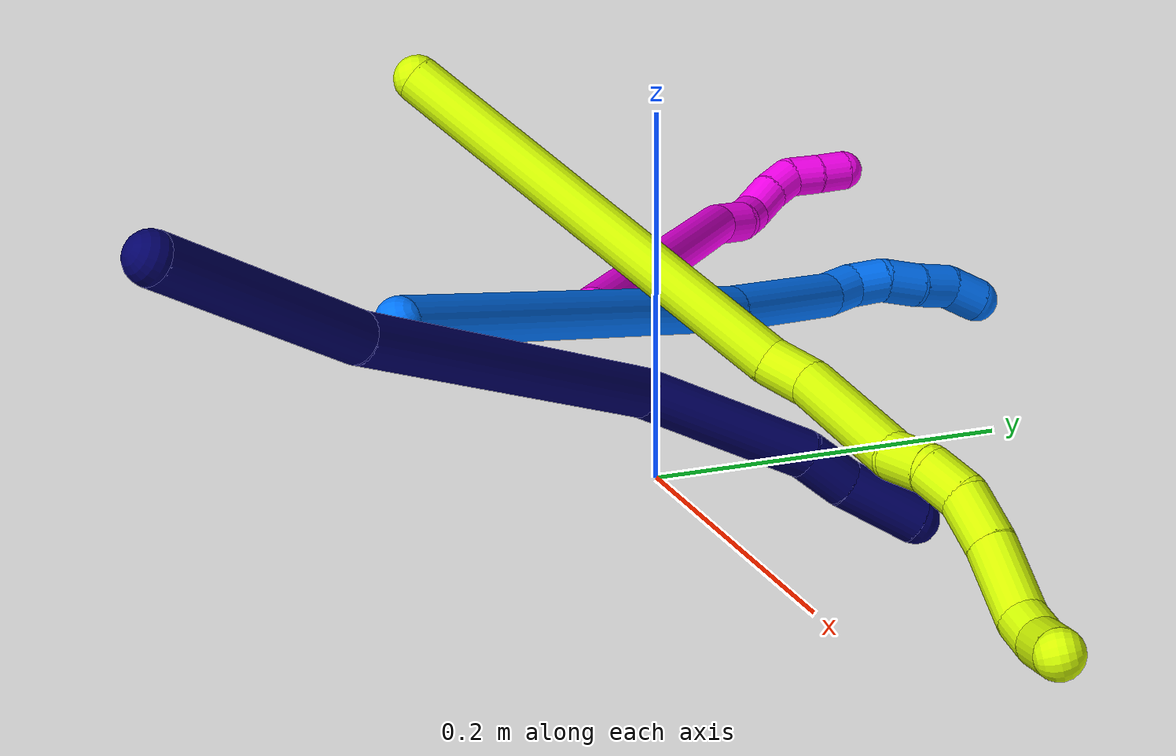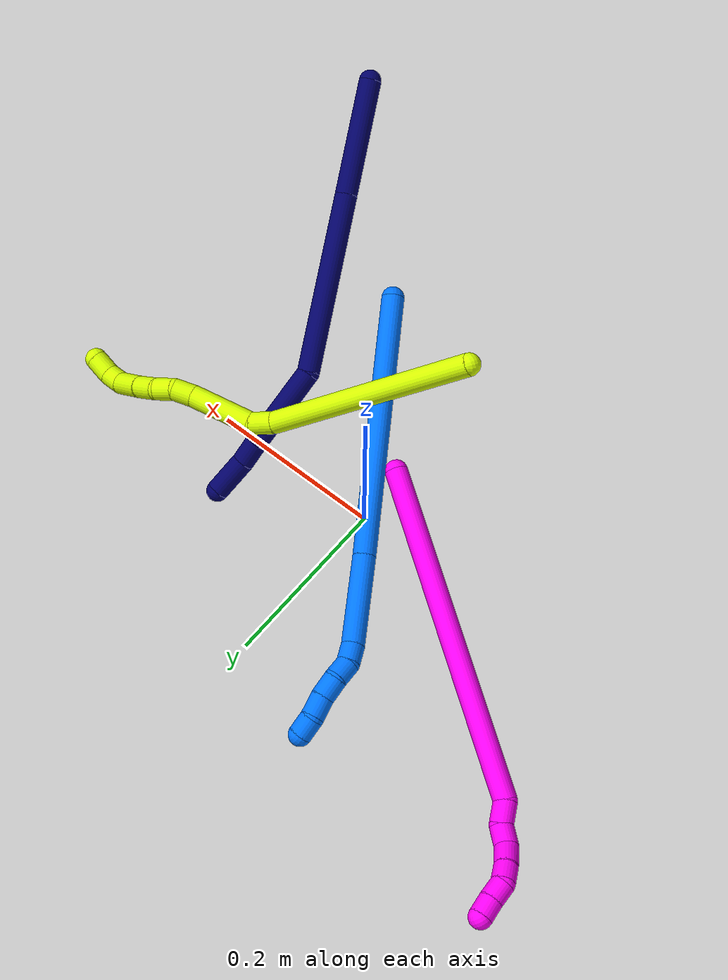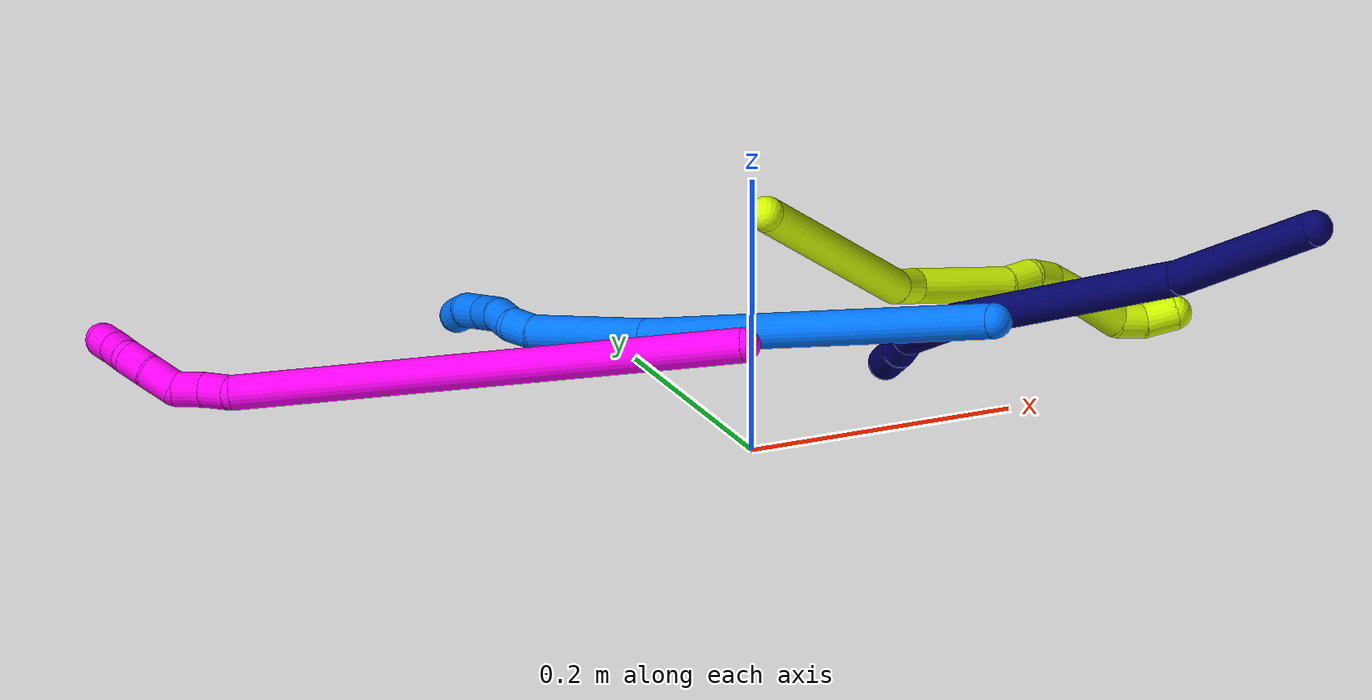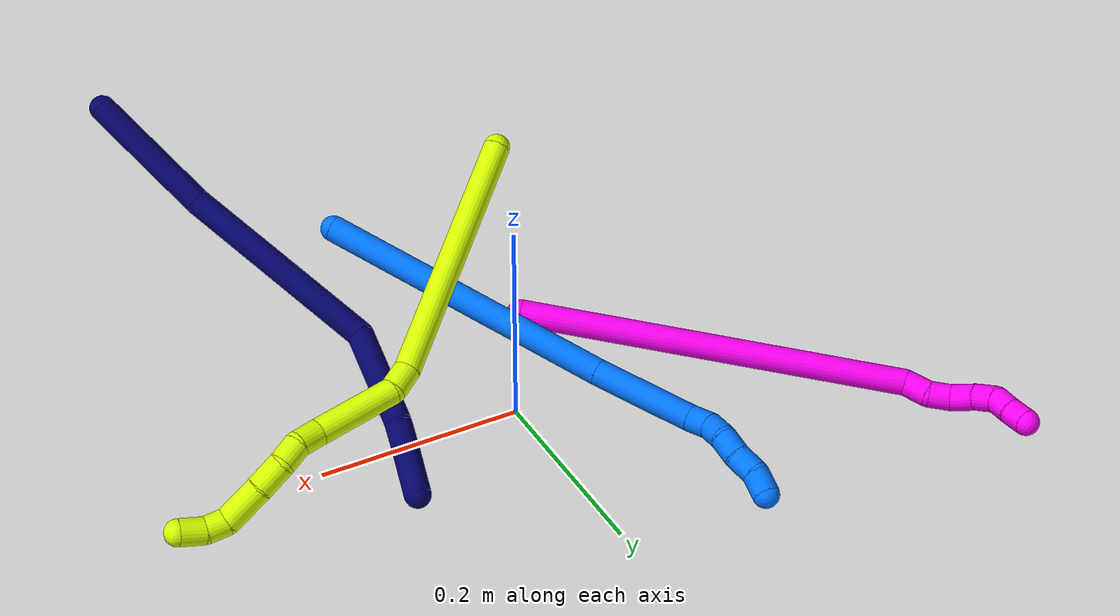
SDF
<sdf version="1.7">
 <world name="default">
  <model name="7">
   <static>0</static>
   <link name="7">
    <collision name="collision-cylinder-e_1_1_4">
     <pose>-0.013851 0.005534 -0.063304 -3.0544 -0.214608 2.37197</pose>
     <geometry><cylinder><radius>0.0125</radius><length>0.130075</length></cylinder></geometry>
     <surface>
      <friction><ode><mu>1.16</mu><mu2>1.16</mu2><slip1>0</slip1><slip2>0</slip2></ode></friction>
      <contact><ode><kp>1e+06</kp><kd>1</kd><max_vel>0</max_vel><min_depth>0.001</min_depth></ode></contact>
     </surface>
    </collision>
    <visual name="visual-cylinder-e_1_1_4">
     <pose>-0.013851 0.005534 -0.063304 -3.0544 -0.214608 2.37197</pose>
     <geometry><cylinder><radius>0.0125</radius><length>0.130075</length></cylinder></geometry>
     <material><ambient>0.003922 0 0.403922 1</ambient></material>
    </visual>
    <collision name="collision-cylinder-e_2_4_5">
     <pose>-0.048097 0.03211 -0.224523 -2.92991 -0.200902 1.51819</pose>
     <geometry><cylinder><radius>0.0125</radius><length>0.204411</length></cylinder></geometry>
     <surface>
      <friction><ode><mu>1.16</mu><mu2>1.16</mu2><slip1>0</slip1><slip2>0</slip2></ode></friction>
      <contact><ode><kp>1e+06</kp><kd>1</kd><max_vel>0</max_vel><min_depth>0.001</min_depth></ode></contact>
     </surface>
    </collision>
    <visual name="visual-cylinder-e_2_4_5">
     <pose>-0.048097 0.03211 -0.224523 -2.92991 -0.200902 1.51819</pose>
     <geometry><cylinder><radius>0.0125</radius><length>0.204411</length></cylinder></geometry>
     <material><ambient>0.003922 0 0.403922 1</ambient></material>
    </visual>
    <collision name="collision-cylinder-e_3_5_6">
     <pose>-0.058478 0.052008 -0.368729 3.11689 0.212992 2.91153</pose>
     <geometry><cylinder><radius>0.0125</radius><length>0.094752</length></cylinder></geometry>
     <surface>
      <friction><ode><mu>1.16</mu><mu2>1.16</mu2><slip1>0</slip1><slip2>0</slip2></ode></friction>
      <contact><ode><kp>1e+06</kp><kd>1</kd><max_vel>0</max_vel><min_depth>0.001</min_depth></ode></contact>
     </surface>
    </collision>
    <visual name="visual-cylinder-e_3_5_6">
     <pose>-0.058478 0.052008 -0.368729 3.11689 0.212992 2.91153</pose>
     <geometry><cylinder><radius>0.0125</radius><length>0.094752</length></cylinder></geometry>
     <material><ambient>0.003922 0 0.403922 1</ambient></material>
    </visual>
    <collision name="collision-cylinder-e_4_6_7">
     <pose>-0.046379 0.047413 -0.427956 2.88085 0.154485 1.06651</pose>
     <geometry><cylinder><radius>0.0125</radius><length>0.027098</length></cylinder></geometry>
     <surface>
      <friction><ode><mu>1.16</mu><mu2>1.16</mu2><slip1>0</slip1><slip2>0</slip2></ode></friction>
      <contact><ode><kp>1e+06</kp><kd>1</kd><max_vel>0</max_vel><min_depth>0.001</min_depth></ode></contact>
     </surface>
    </collision>
    <visual name="visual-cylinder-e_4_6_7">
     <pose>-0.046379 0.047413 -0.427956 2.88085 0.154485 1.06651</pose>
     <geometry><cylinder><radius>0.0125</radius><length>0.027098</length></cylinder></geometry>
     <material><ambient>0.003922 0 0.403922 1</ambient></material>
    </visual>
    <collision name="collision-cylinder-e_5_7_2">
     <pose>-0.03828 0.04062 -0.46161 2.98167 0.279081 2.10468</pose>
     <geometry><cylinder><radius>0.0125</radius><length>0.043663</length></cylinder></geometry>
     <surface>
      <friction><ode><mu>1.16</mu><mu2>1.16</mu2><slip1>0</slip1><slip2>0</slip2></ode></friction>
      <contact><ode><kp>1e+06</kp><kd>1</kd><max_vel>0</max_vel><min_depth>0.001</min_depth></ode></contact>
     </surface>
    </collision>
    <visual name="visual-cylinder-e_5_7_2">
     <pose>-0.03828 0.04062 -0.46161 2.98167 0.279081 2.10468</pose>
     <geometry><cylinder><radius>0.0125</radius><length>0.043663</length></cylinder></geometry>
     <material><ambient>0.003922 0 0.403922 1</ambient></material>
    </visual>
    <collision name="collision-sphere-2">
     <pose>-0.032266 0.037278 -0.482329 0 -0 0</pose>
     <geometry><sphere><radius>0.0125</radius></sphere></geometry>
     <surface>
      <friction><ode><mu>1.16</mu><mu2>1.16</mu2><slip1>0</slip1><slip2>0</slip2></ode></friction>
      <contact><ode><kp>1e+06</kp><kd>1</kd><max_vel>0</max_vel><min_depth>0.001</min_depth></ode></contact>
     </surface>
    </collision>
    <visual name="visual-sphere-2">
     <pose>-0.032266 0.037278 -0.482329 0 -0 0</pose>
     <geometry><sphere><radius>0.0125</radius></sphere></geometry>
     <material><ambient>0.003922 0 0.403922 1</ambient></material>
    </visual>
    <collision name="collision-sphere-7">
     <pose>-0.044294 0.043962 -0.440891 0 -0 0</pose>
     <geometry><sphere><radius>0.0125</radius></sphere></geometry>
     <surface>
      <friction><ode><mu>1.16</mu><mu2>1.16</mu2><slip1>0</slip1><slip2>0</slip2></ode></friction>
      <contact><ode><kp>1e+06</kp><kd>1</kd><max_vel>0</max_vel><min_depth>0.001</min_depth></ode></contact>
     </surface>
    </collision>
    <visual name="visual-sphere-7">
     <pose>-0.044294 0.043962 -0.440891 0 -0 0</pose>
     <geometry><sphere><radius>0.0125</radius></sphere></geometry>
     <material><ambient>0.003922 0 0.403922 1</ambient></material>
    </visual>
    <collision name="collision-sphere-6">
     <pose>-0.048463 0.050864 -0.41502 0 -0 0</pose>
     <geometry><sphere><radius>0.0125</radius></sphere></geometry>
     <surface>
      <friction><ode><mu>1.16</mu><mu2>1.16</mu2><slip1>0</slip1><slip2>0</slip2></ode></friction>
      <contact><ode><kp>1e+06</kp><kd>1</kd><max_vel>0</max_vel><min_depth>0.001</min_depth></ode></contact>
     </surface>
    </collision>
    <visual name="visual-sphere-6">
     <pose>-0.048463 0.050864 -0.41502 0 -0 0</pose>
     <geometry><sphere><radius>0.0125</radius></sphere></geometry>
     <material><ambient>0.003922 0 0.403922 1</ambient></material>
    </visual>
    <collision name="collision-sphere-5">
     <pose>-0.068493 0.053152 -0.322438 0 -0 0</pose>
     <geometry><sphere><radius>0.0125</radius></sphere></geometry>
     <surface>
      <friction><ode><mu>1.16</mu><mu2>1.16</mu2><slip1>0</slip1><slip2>0</slip2></ode></friction>
      <contact><ode><kp>1e+06</kp><kd>1</kd><max_vel>0</max_vel><min_depth>0.001</min_depth></ode></contact>
     </surface>
    </collision>
    <visual name="visual-sphere-5">
     <pose>-0.068493 0.053152 -0.322438 0 -0 0</pose>
     <geometry><sphere><radius>0.0125</radius></sphere></geometry>
     <material><ambient>0.003922 0 0.403922 1</ambient></material>
    </visual>
    <collision name="collision-sphere-1">
     <geometry><sphere><radius>0.0125</radius></sphere></geometry>
     <surface>
      <friction><ode><mu>1.16</mu><mu2>1.16</mu2><slip1>0</slip1><slip2>0</slip2></ode></friction>
      <contact><ode><kp>1e+06</kp><kd>1</kd><max_vel>0</max_vel><min_depth>0.001</min_depth></ode></contact>
     </surface>
    </collision>
    <visual name="visual-sphere-1">
     <geometry><sphere><radius>0.0125</radius></sphere></geometry>
     <material><ambient>0.003922 0 0.403922 1</ambient></material>
    </visual>
    <collision name="collision-sphere-4">
     <pose>-0.027701 0.011068 -0.126609 0 -0 0</pose>
     <geometry><sphere><radius>0.0125</radius></sphere></geometry>
     <surface>
      <friction><ode><mu>1.16</mu><mu2>1.16</mu2><slip1>0</slip1><slip2>0</slip2></ode></friction>
      <contact><ode><kp>1e+06</kp><kd>1</kd><max_vel>0</max_vel><min_depth>0.001</min_depth></ode></contact>
     </surface>
    </collision>
    <visual name="visual-sphere-4">
     <pose>-0.027701 0.011068 -0.126609 0 -0 0</pose>
     <geometry><sphere><radius>0.0125</radius></sphere></geometry>
     <material><ambient>0.003922 0 0.403922 1</ambient></material>
    </visual>
    <inertial>
     <pose>-0.040205 0.030539 -0.241639 0 -0 0</pose>
     <mass>0.5</mass>
     <inertia>
      <ixx>0.000687</ixx>
      <ixy>0</ixy>
      <ixz>0</ixz>
      <iyy>0.001068</iyy>
      <iyz>0</iyz>
      <izz>-3.3e-05</izz>
     </inertia>
    </inertial>
   </link>
   <pose>0.265056 -0.332547 0.234247 1.02358 -0.300396 0.366177</pose>
  </model>
  <model name="10">
   <static>0</static>
   <link name="10">
    <collision name="collision-cylinder-e_1_1_4">
     <pose>-0.042925 0.0823 -0.158838 -2.66354 -0.235496 0.903865</pose>
     <geometry><cylinder><radius>0.0125</radius><length>0.367942</length></cylinder></geometry>
     <surface>
      <friction><ode><mu>1.16</mu><mu2>1.16</mu2><slip1>0</slip1><slip2>0</slip2></ode></friction>
      <contact><ode><kp>1e+06</kp><kd>1</kd><max_vel>0</max_vel><min_depth>0.001</min_depth></ode></contact>
     </surface>
    </collision>
    <visual name="visual-cylinder-e_1_1_4">
     <pose>-0.042925 0.0823 -0.158838 -2.66354 -0.235496 0.903865</pose>
     <geometry><cylinder><radius>0.0125</radius><length>0.367942</length></cylinder></geometry>
     <material><ambient>1 0 0.964706 1</ambient></material>
    </visual>
    <collision name="collision-cylinder-e_2_4_5">
     <pose>-0.085461 0.174192 -0.325349 -2.24559 0.031713 -0.065969</pose>
     <geometry><cylinder><radius>0.0125</radius><length>0.024578</length></cylinder></geometry>
     <surface>
      <friction><ode><mu>1.16</mu><mu2>1.16</mu2><slip1>0</slip1><slip2>0</slip2></ode></friction>
      <contact><ode><kp>1e+06</kp><kd>1</kd><max_vel>0</max_vel><min_depth>0.001</min_depth></ode></contact>
     </surface>
    </collision>
    <visual name="visual-cylinder-e_2_4_5">
     <pose>-0.085461 0.174192 -0.325349 -2.24559 0.031713 -0.065969</pose>
     <geometry><cylinder><radius>0.0125</radius><length>0.024578</length></cylinder></geometry>
     <material><ambient>1 0 0.964706 1</ambient></material>
    </visual>
    <collision name="collision-cylinder-e_3_5_6">
     <pose>-0.087974 0.189896 -0.341743 -2.53021 -0.26615 0.802363</pose>
     <geometry><cylinder><radius>0.0125</radius><length>0.022078</length></cylinder></geometry>
     <surface>
      <friction><ode><mu>1.16</mu><mu2>1.16</mu2><slip1>0</slip1><slip2>0</slip2></ode></friction>
      <contact><ode><kp>1e+06</kp><kd>1</kd><max_vel>0</max_vel><min_depth>0.001</min_depth></ode></contact>
     </surface>
    </collision>
    <visual name="visual-cylinder-e_3_5_6">
     <pose>-0.087974 0.189896 -0.341743 -2.53021 -0.26615 0.802363</pose>
     <geometry><cylinder><radius>0.0125</radius><length>0.022078</length></cylinder></geometry>
     <material><ambient>1 0 0.964706 1</ambient></material>
    </visual>
    <collision name="collision-cylinder-e_4_6_7">
     <pose>-0.096126 0.206232 -0.355179 -2.00294 -0.436198 0.666709</pose>
     <geometry><cylinder><radius>0.0125</radius><length>0.024842</length></cylinder></geometry>
     <surface>
      <friction><ode><mu>1.16</mu><mu2>1.16</mu2><slip1>0</slip1><slip2>0</slip2></ode></friction>
      <contact><ode><kp>1e+06</kp><kd>1</kd><max_vel>0</max_vel><min_depth>0.001</min_depth></ode></contact>
     </surface>
    </collision>
    <visual name="visual-cylinder-e_4_6_7">
     <pose>-0.096126 0.206232 -0.355179 -2.00294 -0.436198 0.666709</pose>
     <geometry><cylinder><radius>0.0125</radius><length>0.024842</length></cylinder></geometry>
     <material><ambient>1 0 0.964706 1</ambient></material>
    </visual>
    <collision name="collision-cylinder-e_5_7_8">
     <pose>-0.104367 0.225489 -0.363583 -1.9584 -0.29766 0.439139</pose>
     <geometry><cylinder><radius>0.0125</radius><length>0.020415</length></cylinder></geometry>
     <surface>
      <friction><ode><mu>1.16</mu><mu2>1.16</mu2><slip1>0</slip1><slip2>0</slip2></ode></friction>
      <contact><ode><kp>1e+06</kp><kd>1</kd><max_vel>0</max_vel><min_depth>0.001</min_depth></ode></contact>
     </surface>
    </collision>
    <visual name="visual-cylinder-e_5_7_8">
     <pose>-0.104367 0.225489 -0.363583 -1.9584 -0.29766 0.439139</pose>
     <geometry><cylinder><radius>0.0125</radius><length>0.020415</length></cylinder></geometry>
     <material><ambient>1 0 0.964706 1</ambient></material>
    </visual>
    <collision name="collision-cylinder-e_6_8_9">
     <pose>-0.105318 0.244077 -0.369657 -1.81551 0.204609 -0.261405</pose>
     <geometry><cylinder><radius>0.0125</radius><length>0.020111</length></cylinder></geometry>
     <surface>
      <friction><ode><mu>1.16</mu><mu2>1.16</mu2><slip1>0</slip1><slip2>0</slip2></ode></friction>
      <contact><ode><kp>1e+06</kp><kd>1</kd><max_vel>0</max_vel><min_depth>0.001</min_depth></ode></contact>
     </surface>
    </collision>
    <visual name="visual-cylinder-e_6_8_9">
     <pose>-0.105318 0.244077 -0.369657 -1.81551 0.204609 -0.261405</pose>
     <geometry><cylinder><radius>0.0125</radius><length>0.020111</length></cylinder></geometry>
     <material><ambient>1 0 0.964706 1</ambient></material>
    </visual>
    <collision name="collision-cylinder-e_7_9_2">
     <pose>-0.101765 0.263099 -0.37494 -1.86778 0.15127 -0.204167</pose>
     <geometry><cylinder><radius>0.0125</radius><length>0.020034</length></cylinder></geometry>
     <surface>
      <friction><ode><mu>1.16</mu><mu2>1.16</mu2><slip1>0</slip1><slip2>0</slip2></ode></friction>
      <contact><ode><kp>1e+06</kp><kd>1</kd><max_vel>0</max_vel><min_depth>0.001</min_depth></ode></contact>
     </surface>
    </collision>
    <visual name="visual-cylinder-e_7_9_2">
     <pose>-0.101765 0.263099 -0.37494 -1.86778 0.15127 -0.204167</pose>
     <geometry><cylinder><radius>0.0125</radius><length>0.020034</length></cylinder></geometry>
     <material><ambient>1 0 0.964706 1</ambient></material>
    </visual>
    <collision name="collision-sphere-2">
     <pose>-0.100255 0.272568 -0.377838 0 -0 0</pose>
     <geometry><sphere><radius>0.0125</radius></sphere></geometry>
     <surface>
      <friction><ode><mu>1.16</mu><mu2>1.16</mu2><slip1>0</slip1><slip2>0</slip2></ode></friction>
      <contact><ode><kp>1e+06</kp><kd>1</kd><max_vel>0</max_vel><min_depth>0.001</min_depth></ode></contact>
     </surface>
    </collision>
    <visual name="visual-sphere-2">
     <pose>-0.100255 0.272568 -0.377838 0 -0 0</pose>
     <geometry><sphere><radius>0.0125</radius></sphere></geometry>
     <material><ambient>1 0 0.964706 1</ambient></material>
    </visual>
    <collision name="collision-sphere-9">
     <pose>-0.103274 0.253629 -0.372042 0 -0 0</pose>
     <geometry><sphere><radius>0.0125</radius></sphere></geometry>
     <surface>
      <friction><ode><mu>1.16</mu><mu2>1.16</mu2><slip1>0</slip1><slip2>0</slip2></ode></friction>
      <contact><ode><kp>1e+06</kp><kd>1</kd><max_vel>0</max_vel><min_depth>0.001</min_depth></ode></contact>
     </surface>
    </collision>
    <visual name="visual-sphere-9">
     <pose>-0.103274 0.253629 -0.372042 0 -0 0</pose>
     <geometry><sphere><radius>0.0125</radius></sphere></geometry>
     <material><ambient>1 0 0.964706 1</ambient></material>
    </visual>
    <collision name="collision-sphere-4">
     <pose>-0.08585 0.164601 -0.317675 0 -0 0</pose>
     <geometry><sphere><radius>0.0125</radius></sphere></geometry>
     <surface>
      <friction><ode><mu>1.16</mu><mu2>1.16</mu2><slip1>0</slip1><slip2>0</slip2></ode></friction>
      <contact><ode><kp>1e+06</kp><kd>1</kd><max_vel>0</max_vel><min_depth>0.001</min_depth></ode></contact>
     </surface>
    </collision>
    <visual name="visual-sphere-4">
     <pose>-0.08585 0.164601 -0.317675 0 -0 0</pose>
     <geometry><sphere><radius>0.0125</radius></sphere></geometry>
     <material><ambient>1 0 0.964706 1</ambient></material>
    </visual>
    <collision name="collision-sphere-1">
     <geometry><sphere><radius>0.0125</radius></sphere></geometry>
     <surface>
      <friction><ode><mu>1.16</mu><mu2>1.16</mu2><slip1>0</slip1><slip2>0</slip2></ode></friction>
      <contact><ode><kp>1e+06</kp><kd>1</kd><max_vel>0</max_vel><min_depth>0.001</min_depth></ode></contact>
     </surface>
    </collision>
    <visual name="visual-sphere-1">
     <geometry><sphere><radius>0.0125</radius></sphere></geometry>
     <material><ambient>1 0 0.964706 1</ambient></material>
    </visual>
    <collision name="collision-sphere-8">
     <pose>-0.107361 0.234524 -0.367271 0 -0 0</pose>
     <geometry><sphere><radius>0.0125</radius></sphere></geometry>
     <surface>
      <friction><ode><mu>1.16</mu><mu2>1.16</mu2><slip1>0</slip1><slip2>0</slip2></ode></friction>
      <contact><ode><kp>1e+06</kp><kd>1</kd><max_vel>0</max_vel><min_depth>0.001</min_depth></ode></contact>
     </surface>
    </collision>
    <visual name="visual-sphere-8">
     <pose>-0.107361 0.234524 -0.367271 0 -0 0</pose>
     <geometry><sphere><radius>0.0125</radius></sphere></geometry>
     <material><ambient>1 0 0.964706 1</ambient></material>
    </visual>
    <collision name="collision-sphere-5">
     <pose>-0.085071 0.183782 -0.333022 0 -0 0</pose>
     <geometry><sphere><radius>0.0125</radius></sphere></geometry>
     <surface>
      <friction><ode><mu>1.16</mu><mu2>1.16</mu2><slip1>0</slip1><slip2>0</slip2></ode></friction>
      <contact><ode><kp>1e+06</kp><kd>1</kd><max_vel>0</max_vel><min_depth>0.001</min_depth></ode></contact>
     </surface>
    </collision>
    <visual name="visual-sphere-5">
     <pose>-0.085071 0.183782 -0.333022 0 -0 0</pose>
     <geometry><sphere><radius>0.0125</radius></sphere></geometry>
     <material><ambient>1 0 0.964706 1</ambient></material>
    </visual>
    <collision name="collision-sphere-6">
     <pose>-0.090878 0.196009 -0.350464 0 -0 0</pose>
     <geometry><sphere><radius>0.0125</radius></sphere></geometry>
     <surface>
      <friction><ode><mu>1.16</mu><mu2>1.16</mu2><slip1>0</slip1><slip2>0</slip2></ode></friction>
      <contact><ode><kp>1e+06</kp><kd>1</kd><max_vel>0</max_vel><min_depth>0.001</min_depth></ode></contact>
     </surface>
    </collision>
    <visual name="visual-sphere-6">
     <pose>-0.090878 0.196009 -0.350464 0 -0 0</pose>
     <geometry><sphere><radius>0.0125</radius></sphere></geometry>
     <material><ambient>1 0 0.964706 1</ambient></material>
    </visual>
    <collision name="collision-sphere-7">
     <pose>-0.101373 0.216455 -0.359894 0 -0 0</pose>
     <geometry><sphere><radius>0.0125</radius></sphere></geometry>
     <surface>
      <friction><ode><mu>1.16</mu><mu2>1.16</mu2><slip1>0</slip1><slip2>0</slip2></ode></friction>
      <contact><ode><kp>1e+06</kp><kd>1</kd><max_vel>0</max_vel><min_depth>0.001</min_depth></ode></contact>
     </surface>
    </collision>
    <visual name="visual-sphere-7">
     <pose>-0.101373 0.216455 -0.359894 0 -0 0</pose>
     <geometry><sphere><radius>0.0125</radius></sphere></geometry>
     <material><ambient>1 0 0.964706 1</ambient></material>
    </visual>
    <inertial>
     <pose>-0.057024 0.117323 -0.210352 0 -0 0</pose>
     <mass>0.5</mass>
     <inertia>
      <ixx>0.005692</ixx>
      <ixy>0</ixy>
      <ixz>0</ixz>
      <iyy>0.001266</iyy>
      <iyz>0</iyz>
      <izz>-0.000928</izz>
     </inertia>
    </inertial>
   </link>
   <pose>-0.02004 -0.02831 0.090803 0.48794 0.908175 0.358008</pose>
  </model>
  <model name="14">
   <static>0</static>
   <link name="14">
    <collision name="collision-cylinder-e_1_1_4">
     <pose>-0.131707 0.063187 0.002886 -1.52515 -1.12307 1.08233</pose>
     <geometry><cylinder><radius>0.0125</radius><length>0.292216</length></cylinder></geometry>
     <surface>
      <friction><ode><mu>1.16</mu><mu2>1.16</mu2><slip1>0</slip1><slip2>0</slip2></ode></friction>
      <contact><ode><kp>1e+06</kp><kd>1</kd><max_vel>0</max_vel><min_depth>0.001</min_depth></ode></contact>
     </surface>
    </collision>
    <visual name="visual-cylinder-e_1_1_4">
     <pose>-0.131707 0.063187 0.002886 -1.52515 -1.12307 1.08233</pose>
     <geometry><cylinder><radius>0.0125</radius><length>0.292216</length></cylinder></geometry>
     <material><ambient>0 0.462745 1 1</ambient></material>
    </visual>
    <collision name="collision-cylinder-e_2_4_5">
     <pose>-0.306349 0.14919 0.004386 -1.63147 -1.08159 1.13592</pose>
     <geometry><cylinder><radius>0.0125</radius><length>0.097283</length></cylinder></geometry>
     <surface>
      <friction><ode><mu>1.16</mu><mu2>1.16</mu2><slip1>0</slip1><slip2>0</slip2></ode></friction>
      <contact><ode><kp>1e+06</kp><kd>1</kd><max_vel>0</max_vel><min_depth>0.001</min_depth></ode></contact>
     </surface>
    </collision>
    <visual name="visual-cylinder-e_2_4_5">
     <pose>-0.306349 0.14919 0.004386 -1.63147 -1.08159 1.13592</pose>
     <geometry><cylinder><radius>0.0125</radius><length>0.097283</length></cylinder></geometry>
     <material><ambient>0 0.462745 1 1</ambient></material>
    </visual>
    <collision name="collision-cylinder-e_3_5_6">
     <pose>-0.35791 0.17765 0.000391 -2.00382 -0.946139 1.35009</pose>
     <geometry><cylinder><radius>0.0125</radius><length>0.021265</length></cylinder></geometry>
     <surface>
      <friction><ode><mu>1.16</mu><mu2>1.16</mu2><slip1>0</slip1><slip2>0</slip2></ode></friction>
      <contact><ode><kp>1e+06</kp><kd>1</kd><max_vel>0</max_vel><min_depth>0.001</min_depth></ode></contact>
     </surface>
    </collision>
    <visual name="visual-cylinder-e_3_5_6">
     <pose>-0.35791 0.17765 0.000391 -2.00382 -0.946139 1.35009</pose>
     <geometry><cylinder><radius>0.0125</radius><length>0.021265</length></cylinder></geometry>
     <material><ambient>0 0.462745 1 1</ambient></material>
    </visual>
    <collision name="collision-cylinder-e_4_6_7">
     <pose>-0.374922 0.185917 -0.007711 -2.69612 -0.942987 2.30549</pose>
     <geometry><cylinder><radius>0.0125</radius><length>0.020726</length></cylinder></geometry>
     <surface>
      <friction><ode><mu>1.16</mu><mu2>1.16</mu2><slip1>0</slip1><slip2>0</slip2></ode></friction>
      <contact><ode><kp>1e+06</kp><kd>1</kd><max_vel>0</max_vel><min_depth>0.001</min_depth></ode></contact>
     </surface>
    </collision>
    <visual name="visual-cylinder-e_4_6_7">
     <pose>-0.374922 0.185917 -0.007711 -2.69612 -0.942987 2.30549</pose>
     <geometry><cylinder><radius>0.0125</radius><length>0.020726</length></cylinder></geometry>
     <material><ambient>0 0.462745 1 1</ambient></material>
    </visual>
    <collision name="collision-cylinder-e_5_7_8">
     <pose>-0.394286 0.189415 -0.017115 -2.9213 -1.22079 2.82799</pose>
     <geometry><cylinder><radius>0.0125</radius><length>0.023371</length></cylinder></geometry>
     <surface>
      <friction><ode><mu>1.16</mu><mu2>1.16</mu2><slip1>0</slip1><slip2>0</slip2></ode></friction>
      <contact><ode><kp>1e+06</kp><kd>1</kd><max_vel>0</max_vel><min_depth>0.001</min_depth></ode></contact>
     </surface>
    </collision>
    <visual name="visual-cylinder-e_5_7_8">
     <pose>-0.394286 0.189415 -0.017115 -2.9213 -1.22079 2.82799</pose>
     <geometry><cylinder><radius>0.0125</radius><length>0.023371</length></cylinder></geometry>
     <material><ambient>0 0.462745 1 1</ambient></material>
    </visual>
    <collision name="collision-cylinder-e_6_8_9">
     <pose>-0.416168 0.192914 -0.024075 -2.43125 -1.2174 2.16352</pose>
     <geometry><cylinder><radius>0.0125</radius><length>0.023246</length></cylinder></geometry>
     <surface>
      <friction><ode><mu>1.16</mu><mu2>1.16</mu2><slip1>0</slip1><slip2>0</slip2></ode></friction>
      <contact><ode><kp>1e+06</kp><kd>1</kd><max_vel>0</max_vel><min_depth>0.001</min_depth></ode></contact>
     </surface>
    </collision>
    <visual name="visual-cylinder-e_6_8_9">
     <pose>-0.416168 0.192914 -0.024075 -2.43125 -1.2174 2.16352</pose>
     <geometry><cylinder><radius>0.0125</radius><length>0.023246</length></cylinder></geometry>
     <material><ambient>0 0.462745 1 1</ambient></material>
    </visual>
    <collision name="collision-cylinder-e_7_9_2">
     <pose>-0.43772 0.194164 -0.029263 2.57114 -1.33645 -2.43026</pose>
     <geometry><cylinder><radius>0.0125</radius><length>0.021892</length></cylinder></geometry>
     <surface>
      <friction><ode><mu>1.16</mu><mu2>1.16</mu2><slip1>0</slip1><slip2>0</slip2></ode></friction>
      <contact><ode><kp>1e+06</kp><kd>1</kd><max_vel>0</max_vel><min_depth>0.001</min_depth></ode></contact>
     </surface>
    </collision>
    <visual name="visual-cylinder-e_7_9_2">
     <pose>-0.43772 0.194164 -0.029263 2.57114 -1.33645 -2.43026</pose>
     <geometry><cylinder><radius>0.0125</radius><length>0.021892</length></cylinder></geometry>
     <material><ambient>0 0.462745 1 1</ambient></material>
    </visual>
    <collision name="collision-sphere-2">
     <pose>-0.448367 0.192792 -0.031403 0 -0 0</pose>
     <geometry><sphere><radius>0.0125</radius></sphere></geometry>
     <surface>
      <friction><ode><mu>1.16</mu><mu2>1.16</mu2><slip1>0</slip1><slip2>0</slip2></ode></friction>
      <contact><ode><kp>1e+06</kp><kd>1</kd><max_vel>0</max_vel><min_depth>0.001</min_depth></ode></contact>
     </surface>
    </collision>
    <visual name="visual-sphere-2">
     <pose>-0.448367 0.192792 -0.031403 0 -0 0</pose>
     <geometry><sphere><radius>0.0125</radius></sphere></geometry>
     <material><ambient>0 0.462745 1 1</ambient></material>
    </visual>
    <collision name="collision-sphere-9">
     <pose>-0.427073 0.195537 -0.027124 0 -0 0</pose>
     <geometry><sphere><radius>0.0125</radius></sphere></geometry>
     <surface>
      <friction><ode><mu>1.16</mu><mu2>1.16</mu2><slip1>0</slip1><slip2>0</slip2></ode></friction>
      <contact><ode><kp>1e+06</kp><kd>1</kd><max_vel>0</max_vel><min_depth>0.001</min_depth></ode></contact>
     </surface>
    </collision>
    <visual name="visual-sphere-9">
     <pose>-0.427073 0.195537 -0.027124 0 -0 0</pose>
     <geometry><sphere><radius>0.0125</radius></sphere></geometry>
     <material><ambient>0 0.462745 1 1</ambient></material>
    </visual>
    <collision name="collision-sphere-4">
     <pose>-0.263413 0.126374 0.005772 0 -0 0</pose>
     <geometry><sphere><radius>0.0125</radius></sphere></geometry>
     <surface>
      <friction><ode><mu>1.16</mu><mu2>1.16</mu2><slip1>0</slip1><slip2>0</slip2></ode></friction>
      <contact><ode><kp>1e+06</kp><kd>1</kd><max_vel>0</max_vel><min_depth>0.001</min_depth></ode></contact>
     </surface>
    </collision>
    <visual name="visual-sphere-4">
     <pose>-0.263413 0.126374 0.005772 0 -0 0</pose>
     <geometry><sphere><radius>0.0125</radius></sphere></geometry>
     <material><ambient>0 0.462745 1 1</ambient></material>
    </visual>
    <collision name="collision-sphere-1">
     <geometry><sphere><radius>0.0125</radius></sphere></geometry>
     <surface>
      <friction><ode><mu>1.16</mu><mu2>1.16</mu2><slip1>0</slip1><slip2>0</slip2></ode></friction>
      <contact><ode><kp>1e+06</kp><kd>1</kd><max_vel>0</max_vel><min_depth>0.001</min_depth></ode></contact>
     </surface>
    </collision>
    <visual name="visual-sphere-1">
     <geometry><sphere><radius>0.0125</radius></sphere></geometry>
     <material><ambient>0 0.462745 1 1</ambient></material>
    </visual>
    <collision name="collision-sphere-8">
     <pose>-0.405263 0.190291 -0.021025 0 -0 0</pose>
     <geometry><sphere><radius>0.0125</radius></sphere></geometry>
     <surface>
      <friction><ode><mu>1.16</mu><mu2>1.16</mu2><slip1>0</slip1><slip2>0</slip2></ode></friction>
      <contact><ode><kp>1e+06</kp><kd>1</kd><max_vel>0</max_vel><min_depth>0.001</min_depth></ode></contact>
     </surface>
    </collision>
    <visual name="visual-sphere-8">
     <pose>-0.405263 0.190291 -0.021025 0 -0 0</pose>
     <geometry><sphere><radius>0.0125</radius></sphere></geometry>
     <material><ambient>0 0.462745 1 1</ambient></material>
    </visual>
    <collision name="collision-sphere-5">
     <pose>-0.349286 0.172006 0.003 0 -0 0</pose>
     <geometry><sphere><radius>0.0125</radius></sphere></geometry>
     <surface>
      <friction><ode><mu>1.16</mu><mu2>1.16</mu2><slip1>0</slip1><slip2>0</slip2></ode></friction>
      <contact><ode><kp>1e+06</kp><kd>1</kd><max_vel>0</max_vel><min_depth>0.001</min_depth></ode></contact>
     </surface>
    </collision>
    <visual name="visual-sphere-5">
     <pose>-0.349286 0.172006 0.003 0 -0 0</pose>
     <geometry><sphere><radius>0.0125</radius></sphere></geometry>
     <material><ambient>0 0.462745 1 1</ambient></material>
    </visual>
    <collision name="collision-sphere-6">
     <pose>-0.366535 0.183294 -0.002218 0 -0 0</pose>
     <geometry><sphere><radius>0.0125</radius></sphere></geometry>
     <surface>
      <friction><ode><mu>1.16</mu><mu2>1.16</mu2><slip1>0</slip1><slip2>0</slip2></ode></friction>
      <contact><ode><kp>1e+06</kp><kd>1</kd><max_vel>0</max_vel><min_depth>0.001</min_depth></ode></contact>
     </surface>
    </collision>
    <visual name="visual-sphere-6">
     <pose>-0.366535 0.183294 -0.002218 0 -0 0</pose>
     <geometry><sphere><radius>0.0125</radius></sphere></geometry>
     <material><ambient>0 0.462745 1 1</ambient></material>
    </visual>
    <collision name="collision-sphere-7">
     <pose>-0.383309 0.18854 -0.013204 0 -0 0</pose>
     <geometry><sphere><radius>0.0125</radius></sphere></geometry>
     <surface>
      <friction><ode><mu>1.16</mu><mu2>1.16</mu2><slip1>0</slip1><slip2>0</slip2></ode></friction>
      <contact><ode><kp>1e+06</kp><kd>1</kd><max_vel>0</max_vel><min_depth>0.001</min_depth></ode></contact>
     </surface>
    </collision>
    <visual name="visual-sphere-7">
     <pose>-0.383309 0.18854 -0.013204 0 -0 0</pose>
     <geometry><sphere><radius>0.0125</radius></sphere></geometry>
     <material><ambient>0 0.462745 1 1</ambient></material>
    </visual>
    <inertial>
     <pose>-0.224286 0.107542 -0.000963 0 -0 0</pose>
     <mass>0.5</mass>
     <inertia>
      <ixx>0.00124</ixx>
      <ixy>0</ixy>
      <ixz>0</ixz>
      <iyy>0.002628</iyy>
      <iyz>0</iyz>
      <izz>0.001018</izz>
     </inertia>
    </inertial>
   </link>
   <pose>0.102748 -0.173978 0.139073 2.35617 -0.561276 -1.33085</pose>
  </model>
  <model name="15">
   <static>0</static>
   <link name="15">
    <collision name="collision-cylinder-e_1_1_4">
     <pose>0.092295 -0.011896 -0.072413 2.97877 0.89905 2.80654</pose>
     <geometry><cylinder><radius>0.0125</radius><length>0.235827</length></cylinder></geometry>
     <surface>
      <friction><ode><mu>1.16</mu><mu2>1.16</mu2><slip1>0</slip1><slip2>0</slip2></ode></friction>
      <contact><ode><kp>1e+06</kp><kd>1</kd><max_vel>0</max_vel><min_depth>0.001</min_depth></ode></contact>
     </surface>
    </collision>
    <visual name="visual-cylinder-e_1_1_4">
     <pose>0.092295 -0.011896 -0.072413 2.97877 0.89905 2.80654</pose>
     <geometry><cylinder><radius>0.0125</radius><length>0.235827</length></cylinder></geometry>
     <material><ambient>0.835294 1 0 1</ambient></material>
    </visual>
    <collision name="collision-cylinder-e_2_4_5">
     <pose>0.193603 -0.021919 -0.153765 -2.93512 0.778779 -2.64696</pose>
     <geometry><cylinder><radius>0.0125</radius><length>0.025663</length></cylinder></geometry>
     <surface>
      <friction><ode><mu>1.16</mu><mu2>1.16</mu2><slip1>0</slip1><slip2>0</slip2></ode></friction>
      <contact><ode><kp>1e+06</kp><kd>1</kd><max_vel>0</max_vel><min_depth>0.001</min_depth></ode></contact>
     </surface>
    </collision>
    <visual name="visual-cylinder-e_2_4_5">
     <pose>0.193603 -0.021919 -0.153765 -2.93512 0.778779 -2.64696</pose>
     <geometry><cylinder><radius>0.0125</radius><length>0.025663</length></cylinder></geometry>
     <material><ambient>0.835294 1 0 1</ambient></material>
    </visual>
    <collision name="collision-cylinder-e_3_5_6">
     <pose>0.232163 -0.000391 -0.178977 -2.26233 0.858446 -1.54353</pose>
     <geometry><cylinder><radius>0.0125</radius><length>0.078081</length></cylinder></geometry>
     <surface>
      <friction><ode><mu>1.16</mu><mu2>1.16</mu2><slip1>0</slip1><slip2>0</slip2></ode></friction>
      <contact><ode><kp>1e+06</kp><kd>1</kd><max_vel>0</max_vel><min_depth>0.001</min_depth></ode></contact>
     </surface>
    </collision>
    <visual name="visual-cylinder-e_3_5_6">
     <pose>0.232163 -0.000391 -0.178977 -2.26233 0.858446 -1.54353</pose>
     <geometry><cylinder><radius>0.0125</radius><length>0.078081</length></cylinder></geometry>
     <material><ambient>0.835294 1 0 1</ambient></material>
    </visual>
    <collision name="collision-cylinder-e_4_6_7">
     <pose>0.268916 0.025287 -0.202683 -2.46063 0.645571 -1.51334</pose>
     <geometry><cylinder><radius>0.0125</radius><length>0.023954</length></cylinder></geometry>
     <surface>
      <friction><ode><mu>1.16</mu><mu2>1.16</mu2><slip1>0</slip1><slip2>0</slip2></ode></friction>
      <contact><ode><kp>1e+06</kp><kd>1</kd><max_vel>0</max_vel><min_depth>0.001</min_depth></ode></contact>
     </surface>
    </collision>
    <visual name="visual-cylinder-e_4_6_7">
     <pose>0.268916 0.025287 -0.202683 -2.46063 0.645571 -1.51334</pose>
     <geometry><cylinder><radius>0.0125</radius><length>0.023954</length></cylinder></geometry>
     <material><ambient>0.835294 1 0 1</ambient></material>
    </visual>
    <collision name="collision-cylinder-e_5_7_8">
     <pose>0.285271 0.03323 -0.216552 -2.8515 0.93753 -2.57995</pose>
     <geometry><cylinder><radius>0.0125</radius><length>0.0227</length></cylinder></geometry>
     <surface>
      <friction><ode><mu>1.16</mu><mu2>1.16</mu2><slip1>0</slip1><slip2>0</slip2></ode></friction>
      <contact><ode><kp>1e+06</kp><kd>1</kd><max_vel>0</max_vel><min_depth>0.001</min_depth></ode></contact>
     </surface>
    </collision>
    <visual name="visual-cylinder-e_5_7_8">
     <pose>0.285271 0.03323 -0.216552 -2.8515 0.93753 -2.57995</pose>
     <geometry><cylinder><radius>0.0125</radius><length>0.0227</length></cylinder></geometry>
     <material><ambient>0.835294 1 0 1</ambient></material>
    </visual>
    <collision name="collision-cylinder-e_6_8_9">
     <pose>0.308025 0.037351 -0.22666 -2.60196 1.26604 -2.4207</pose>
     <geometry><cylinder><radius>0.0125</radius><length>0.028524</length></cylinder></geometry>
     <surface>
      <friction><ode><mu>1.16</mu><mu2>1.16</mu2><slip1>0</slip1><slip2>0</slip2></ode></friction>
      <contact><ode><kp>1e+06</kp><kd>1</kd><max_vel>0</max_vel><min_depth>0.001</min_depth></ode></contact>
     </surface>
    </collision>
    <visual name="visual-cylinder-e_6_8_9">
     <pose>0.308025 0.037351 -0.22666 -2.60196 1.26604 -2.4207</pose>
     <geometry><cylinder><radius>0.0125</radius><length>0.028524</length></cylinder></geometry>
     <material><ambient>0.835294 1 0 1</ambient></material>
    </visual>
    <collision name="collision-cylinder-e_7_9_10">
     <pose>0.341345 0.042669 -0.233402 -2.34838 1.3523 -2.17942</pose>
     <geometry><cylinder><radius>0.0125</radius><length>0.040392</length></cylinder></geometry>
     <surface>
      <friction><ode><mu>1.16</mu><mu2>1.16</mu2><slip1>0</slip1><slip2>0</slip2></ode></friction>
      <contact><ode><kp>1e+06</kp><kd>1</kd><max_vel>0</max_vel><min_depth>0.001</min_depth></ode></contact>
     </surface>
    </collision>
    <visual name="visual-cylinder-e_7_9_10">
     <pose>0.341345 0.042669 -0.233402 -2.34838 1.3523 -2.17942</pose>
     <geometry><cylinder><radius>0.0125</radius><length>0.040392</length></cylinder></geometry>
     <material><ambient>0.835294 1 0 1</ambient></material>
    </visual>
    <collision name="collision-cylinder-e_8_10_11">
     <pose>0.368887 0.051741 -0.239312 -2.01581 0.870553 -1.27023</pose>
     <geometry><cylinder><radius>0.0125</radius><length>0.020467</length></cylinder></geometry>
     <surface>
      <friction><ode><mu>1.16</mu><mu2>1.16</mu2><slip1>0</slip1><slip2>0</slip2></ode></friction>
      <contact><ode><kp>1e+06</kp><kd>1</kd><max_vel>0</max_vel><min_depth>0.001</min_depth></ode></contact>
     </surface>
    </collision>
    <visual name="visual-cylinder-e_8_10_11">
     <pose>0.368887 0.051741 -0.239312 -2.01581 0.870553 -1.27023</pose>
     <geometry><cylinder><radius>0.0125</radius><length>0.020467</length></cylinder></geometry>
     <material><ambient>0.835294 1 0 1</ambient></material>
    </visual>
    <collision name="collision-cylinder-e_9_11_2">
     <pose>0.382949 0.067697 -0.245277 -1.87363 0.536803 -0.715936</pose>
     <geometry><cylinder><radius>0.0125</radius><length>0.024392</length></cylinder></geometry>
     <surface>
      <friction><ode><mu>1.16</mu><mu2>1.16</mu2><slip1>0</slip1><slip2>0</slip2></ode></friction>
      <contact><ode><kp>1e+06</kp><kd>1</kd><max_vel>0</max_vel><min_depth>0.001</min_depth></ode></contact>
     </surface>
    </collision>
    <visual name="visual-cylinder-e_9_11_2">
     <pose>0.382949 0.067697 -0.245277 -1.87363 0.536803 -0.715936</pose>
     <geometry><cylinder><radius>0.0125</radius><length>0.024392</length></cylinder></geometry>
     <material><ambient>0.835294 1 0 1</ambient></material>
    </visual>
    <collision name="collision-sphere-2">
     <pose>0.389186 0.077701 -0.248402 0 -0 0</pose>
     <geometry><sphere><radius>0.0125</radius></sphere></geometry>
     <surface>
      <friction><ode><mu>1.16</mu><mu2>1.16</mu2><slip1>0</slip1><slip2>0</slip2></ode></friction>
      <contact><ode><kp>1e+06</kp><kd>1</kd><max_vel>0</max_vel><min_depth>0.001</min_depth></ode></contact>
     </surface>
    </collision>
    <visual name="visual-sphere-2">
     <pose>0.389186 0.077701 -0.248402 0 -0 0</pose>
     <geometry><sphere><radius>0.0125</radius></sphere></geometry>
     <material><ambient>0.835294 1 0 1</ambient></material>
    </visual>
    <collision name="collision-sphere-11">
     <pose>0.376712 0.057693 -0.242151 0 -0 0</pose>
     <geometry><sphere><radius>0.0125</radius></sphere></geometry>
     <surface>
      <friction><ode><mu>1.16</mu><mu2>1.16</mu2><slip1>0</slip1><slip2>0</slip2></ode></friction>
      <contact><ode><kp>1e+06</kp><kd>1</kd><max_vel>0</max_vel><min_depth>0.001</min_depth></ode></contact>
     </surface>
    </collision>
    <visual name="visual-sphere-11">
     <pose>0.376712 0.057693 -0.242151 0 -0 0</pose>
     <geometry><sphere><radius>0.0125</radius></sphere></geometry>
     <material><ambient>0.835294 1 0 1</ambient></material>
    </visual>
    <collision name="collision-sphere-10">
     <pose>0.361061 0.045789 -0.236474 0 -0 0</pose>
     <geometry><sphere><radius>0.0125</radius></sphere></geometry>
     <surface>
      <friction><ode><mu>1.16</mu><mu2>1.16</mu2><slip1>0</slip1><slip2>0</slip2></ode></friction>
      <contact><ode><kp>1e+06</kp><kd>1</kd><max_vel>0</max_vel><min_depth>0.001</min_depth></ode></contact>
     </surface>
    </collision>
    <visual name="visual-sphere-10">
     <pose>0.361061 0.045789 -0.236474 0 -0 0</pose>
     <geometry><sphere><radius>0.0125</radius></sphere></geometry>
     <material><ambient>0.835294 1 0 1</ambient></material>
    </visual>
    <collision name="collision-sphere-9">
     <pose>0.321629 0.039549 -0.230331 0 -0 0</pose>
     <geometry><sphere><radius>0.0125</radius></sphere></geometry>
     <surface>
      <friction><ode><mu>1.16</mu><mu2>1.16</mu2><slip1>0</slip1><slip2>0</slip2></ode></friction>
      <contact><ode><kp>1e+06</kp><kd>1</kd><max_vel>0</max_vel><min_depth>0.001</min_depth></ode></contact>
     </surface>
    </collision>
    <visual name="visual-sphere-9">
     <pose>0.321629 0.039549 -0.230331 0 -0 0</pose>
     <geometry><sphere><radius>0.0125</radius></sphere></geometry>
     <material><ambient>0.835294 1 0 1</ambient></material>
    </visual>
    <collision name="collision-sphere-4">
     <pose>0.18459 -0.023792 -0.144826 0 -0 0</pose>
     <geometry><sphere><radius>0.0125</radius></sphere></geometry>
     <surface>
      <friction><ode><mu>1.16</mu><mu2>1.16</mu2><slip1>0</slip1><slip2>0</slip2></ode></friction>
      <contact><ode><kp>1e+06</kp><kd>1</kd><max_vel>0</max_vel><min_depth>0.001</min_depth></ode></contact>
     </surface>
    </collision>
    <visual name="visual-sphere-4">
     <pose>0.18459 -0.023792 -0.144826 0 -0 0</pose>
     <geometry><sphere><radius>0.0125</radius></sphere></geometry>
     <material><ambient>0.835294 1 0 1</ambient></material>
    </visual>
    <collision name="collision-sphere-1">
     <geometry><sphere><radius>0.0125</radius></sphere></geometry>
     <surface>
      <friction><ode><mu>1.16</mu><mu2>1.16</mu2><slip1>0</slip1><slip2>0</slip2></ode></friction>
      <contact><ode><kp>1e+06</kp><kd>1</kd><max_vel>0</max_vel><min_depth>0.001</min_depth></ode></contact>
     </surface>
    </collision>
    <visual name="visual-sphere-1">
     <geometry><sphere><radius>0.0125</radius></sphere></geometry>
     <material><ambient>0.835294 1 0 1</ambient></material>
    </visual>
    <collision name="collision-sphere-8">
     <pose>0.29442 0.035152 -0.222988 0 -0 0</pose>
     <geometry><sphere><radius>0.0125</radius></sphere></geometry>
     <surface>
      <friction><ode><mu>1.16</mu><mu2>1.16</mu2><slip1>0</slip1><slip2>0</slip2></ode></friction>
      <contact><ode><kp>1e+06</kp><kd>1</kd><max_vel>0</max_vel><min_depth>0.001</min_depth></ode></contact>
     </surface>
    </collision>
    <visual name="visual-sphere-8">
     <pose>0.29442 0.035152 -0.222988 0 -0 0</pose>
     <geometry><sphere><radius>0.0125</radius></sphere></geometry>
     <material><ambient>0.835294 1 0 1</ambient></material>
    </visual>
    <collision name="collision-sphere-5">
     <pose>0.202616 -0.020047 -0.162704 0 -0 0</pose>
     <geometry><sphere><radius>0.0125</radius></sphere></geometry>
     <surface>
      <friction><ode><mu>1.16</mu><mu2>1.16</mu2><slip1>0</slip1><slip2>0</slip2></ode></friction>
      <contact><ode><kp>1e+06</kp><kd>1</kd><max_vel>0</max_vel><min_depth>0.001</min_depth></ode></contact>
     </surface>
    </collision>
    <visual name="visual-sphere-5">
     <pose>0.202616 -0.020047 -0.162704 0 -0 0</pose>
     <geometry><sphere><radius>0.0125</radius></sphere></geometry>
     <material><ambient>0.835294 1 0 1</ambient></material>
    </visual>
    <collision name="collision-sphere-6">
     <pose>0.26171 0.019264 -0.19525 0 -0 0</pose>
     <geometry><sphere><radius>0.0125</radius></sphere></geometry>
     <surface>
      <friction><ode><mu>1.16</mu><mu2>1.16</mu2><slip1>0</slip1><slip2>0</slip2></ode></friction>
      <contact><ode><kp>1e+06</kp><kd>1</kd><max_vel>0</max_vel><min_depth>0.001</min_depth></ode></contact>
     </surface>
    </collision>
    <visual name="visual-sphere-6">
     <pose>0.26171 0.019264 -0.19525 0 -0 0</pose>
     <geometry><sphere><radius>0.0125</radius></sphere></geometry>
     <material><ambient>0.835294 1 0 1</ambient></material>
    </visual>
    <collision name="collision-sphere-7">
     <pose>0.276122 0.031309 -0.210116 0 -0 0</pose>
     <geometry><sphere><radius>0.0125</radius></sphere></geometry>
     <surface>
      <friction><ode><mu>1.16</mu><mu2>1.16</mu2><slip1>0</slip1><slip2>0</slip2></ode></friction>
      <contact><ode><kp>1e+06</kp><kd>1</kd><max_vel>0</max_vel><min_depth>0.001</min_depth></ode></contact>
     </surface>
    </collision>
    <visual name="visual-sphere-7">
     <pose>0.276122 0.031309 -0.210116 0 -0 0</pose>
     <geometry><sphere><radius>0.0125</radius></sphere></geometry>
     <material><ambient>0.835294 1 0 1</ambient></material>
    </visual>
    <inertial>
     <pose>0.194487 0.006922 -0.143085 0 -0 0</pose>
     <mass>0.5</mass>
     <inertia>
      <ixx>-0.000428</ixx>
      <ixy>0</ixy>
      <ixz>0</ixz>
      <iyy>0.001309</iyy>
      <iyz>0</iyz>
      <izz>-0.000847</izz>
     </inertia>
    </inertial>
   </link>
   <pose>-0.042064 -0.11483 0.218779 1.94535 0.854074 -0.102662</pose>
  </model>
 </world>
</sdf>
